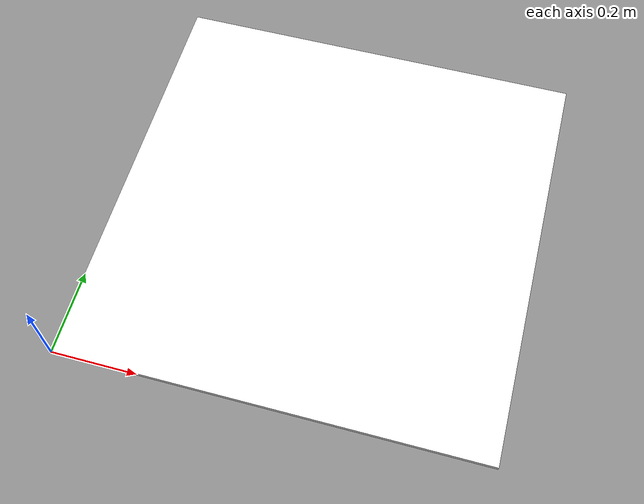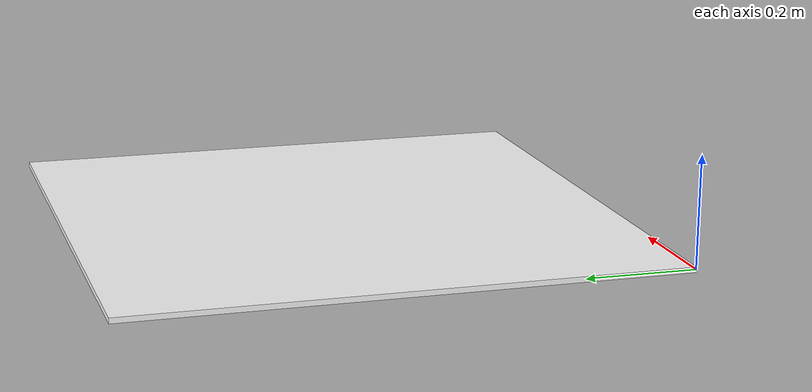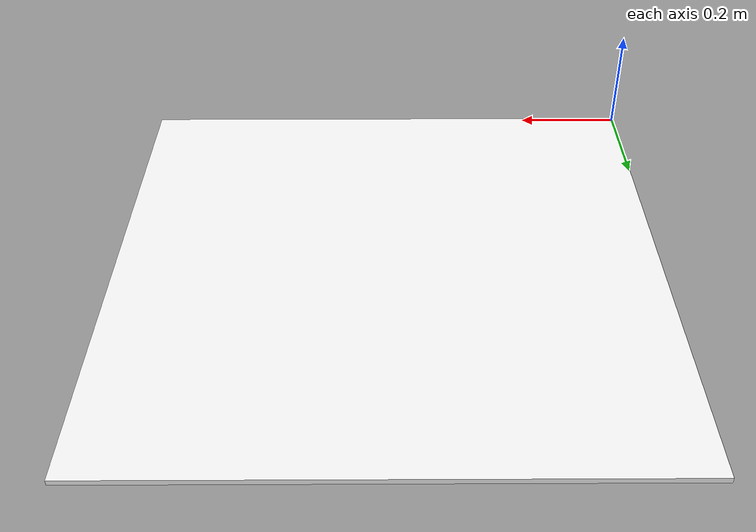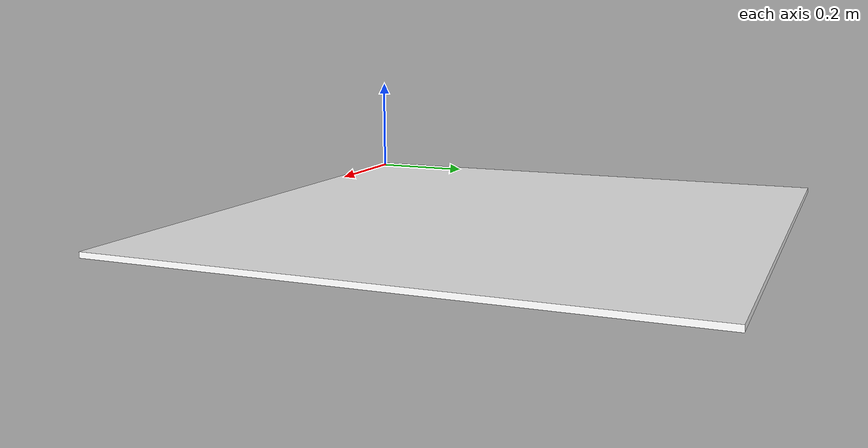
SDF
<?xml version="1.0"?>
<sdf version="1.9">
	<model name="starting_zone">
		<static> true </static>
		<pose>0.5 0.5 0 0 0 0</pose>
		<link name="link">
			<collision name='collision'>
				<geometry>
					<box>
						<size>1 2 0.01</size>
					</box>
				</geometry>
			</collision>

			<visual name="visual">
				<cast_shadows>false</cast_shadows>
				<geometry>
					<box>
						<size>1 1 0.01</size>
					</box>
				</geometry>
				<material>
					<diffuse>1.0 1.0 1.0</diffuse>
					<specular>1.0 1.0 1.0</specular>
					<pbr>
						<metal>
							<albedo_map>
								model://starting_zone/materials/textures/LandingZone.jpg</albedo_map>
						</metal>
					</pbr>
				</material>
			</visual>
		</link>
	</model>
</sdf>
